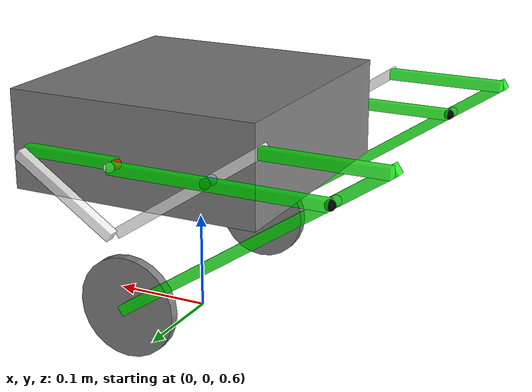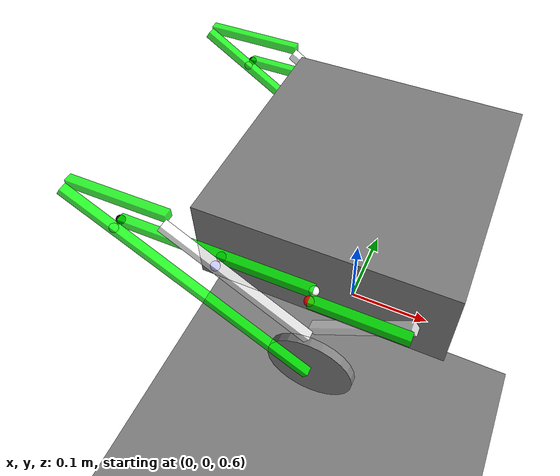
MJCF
<?xml version='1.0' encoding='utf-8'?>
<mujoco>
    <compiler angle="radian" meshdir="meshes" autolimits="true" />
    <option timestep="0.002" gravity="0 0 -9.81" integrator="implicitfast" density="1.225" viscosity="1.8e-5" />
    <asset>
        <mesh name="tetrahedron" vertex="0 0 0 1 0 0 0 1 0 0 0 1" />
        <texture type="skybox" builtin="gradient" rgb1=".1 .1 .1" rgb2=".9 .9 .9" width="512" height="512" />
        <texture name="plane" type="2d" builtin="checker" rgb1=".1 .1 .1" rgb2=".9 .9 .9" width="512" height="512" mark="cross" markrgb=".8 .8 .8" />
        <material name="plane" reflectance="0.3" texture="plane" texrepeat="1 1" texuniform="true" />
    </asset>

    <default>

    </default>

    <worldbody>
        <geom type="plane" material="plane" pos="0 0 0" size="0 0 .25" />
        <light directional="true" dir="0 0 -1" diffuse="1 1 1" specular=".5 .5 .5" />

        <body>

        <body name="body" pos="0 0 .8">
            <geom type="box" size="0.13 0.13 0.05" mass="10.0" />
        </body>

        <body name="left" pos="0 -0.15 .8">

            <geom type="sphere" size="0.001" mass="0.001" rgba="0 0 0 0" />
            <body name="l1_L" pos="0 0 0">
                <geom type="box" size="0.04900000 0.00500000 0.00500000" rgba="0 1 0 .8" pos="0.04900000 0.00000000 0.00000000" quat="1.00000000 0.00000000 0.00000000 0.00000000" />
                <joint type="hinge" name="joint_l1_L" pos="0 0 0" axis="0 1 0" />
                <site type="sphere" name="l1_L" size=".005" pos="0 0 0" rgba="1 0 0 1" />

                <body name="l2_L" pos="0.098 0.012 0">
                    <joint type="hinge" name="joint_l2_L" pos="0 0 0" axis="0 1 0" />
                    <geom type="box" size="0.05900092 0.00500000 0.00500000" rgba="1 1 1 .8" pos="-0.04900000 0.00000000 -0.03286500" quat="-0.00000000 0.95668583 0.00000000 0.29112234" />

                    <body name="l3_L" pos="-0.098 -0.012 -0.06573">
                    <joint type="hinge" name="joint_l3_L" pos="0 0 0" axis="0 1 0" />
                    <geom type="box" size="0.09100031 0.00500000 0.00500000" rgba="1 1 1 .8" pos="-0.07557500 0.00000000 0.05069000" quat="0.00000000 -0.95668481 0.00000000 0.29112569" />
                    <site type="sphere" name="l3_L" size=".005" pos="-0.098 0 0.06573" rgba="0 0 1 1" />

                    <body name="l4_L" pos="-0.15115 0.012 0.10138">
                    <joint type="hinge" name="joint_l4_L" pos="0 0 0" axis="0 1 0" />
                    <geom type="box" size="0.05850000 0.00500000 0.00500000" rgba="0 1 0 .8" pos="-0.05850000 0.00000000 0.00000000" quat="0.00000000 0.00000000 1.00000000 0.00000000" />

                    <body name="l5_L" pos="-0.117 -0.012 0">
                    <joint type="hinge" name="joint_l5_L" pos="0 0 0" axis="0 1 0" />
                    <geom type="box" size="0.16099959 0.00500000 0.00500000" rgba="0 1 0 .8" pos="0.13371000 0.00000000 -0.08968000" quat="-0.00000000 0.29111936 0.00000000 0.95668674" />
                    <site type="sphere" name="l5_L" size=".005" pos="0.05315 0 -0.03565" rgba="1 1 1 1" />

                    <body name="wheel_L" pos="0.26742 0.01 -0.17936">
                        <geom type="cylinder" size="0.05 0.005" mass="00.5" euler="1.57 0 0" />
                        <joint type="hinge" name="joint_wheel_L" pos="0 0 0" axis="0 1 0" />
                    </body>

                    </body>
                    </body>
                    </body>
                    </body>
            </body>

            <body name="l6" pos="0 0.012 0">
              <joint type="hinge" name="joint_l6_L" pos="0 0 0" axis="0 1 0" />

              <geom type="box" size="0.10750000 0.00500000 0.00500000" rgba="0 1 0 .8" pos="-0.10750000 0.00000000 0.00000000" quat="0.00000000 0.00000000 1.00000000 0.00000000" />
              <site type="sphere" name="l6r_L" size=".005" pos="0 0 0" rgba="1 1 1 1" />
              <site type="sphere" name="l6m_L" size=".005" pos="-0.098 0 0" rgba="0 0 0 1" />
              <site type="sphere" name="l6l_L" size=".005" pos="-0.215 0 0" rgba="0 0 0 1" />
            </body>

        </body>

        <body name="right" pos="0 0.15 .8">

            <geom type="sphere" size="0.001" mass="0.001" rgba="0 0 0 0" />
            <body name="l1_R" pos="0 0 0">
                <geom type="box" size="0.04900000 0.00500000 0.00500000" rgba="0 1 0 .8" pos="0.04900000 0.00000000 0.00000000" quat="1.00000000 0.00000000 0.00000000 0.00000000" />
                <joint type="hinge" name="joint_l1_R" pos="0 0 0" axis="0 1 0" />
                <site type="sphere" name="l1_R" size=".005" pos="0 0 0" rgba="1 0 0 1" />

                <body name="l2_R" pos="0.098 0.012 0">
                    <joint type="hinge" name="joint_l2_R" pos="0 0 0" axis="0 1 0" />
                    <geom type="box" size="0.05900092 0.00500000 0.00500000" rgba="1 1 1 .8" pos="-0.04900000 0.00000000 -0.03286500" quat="-0.00000000 0.95668583 0.00000000 0.29112234" />

                    <body name="l3_R" pos="-0.098 -0.012 -0.06573">
                    <joint type="hinge" name="joint_l3_R" pos="0 0 0" axis="0 1 0" />
                    <geom type="box" size="0.09100031 0.00500000 0.00500000" rgba="1 1 1 .8" pos="-0.07557500 0.00000000 0.05069000" quat="0.00000000 -0.95668481 0.00000000 0.29112569" />
                    <site type="sphere" name="l3_R" size=".005" pos="-0.098 0 0.06573" rgba="0 0 1 1" />

                    <body name="l4_R" pos="-0.15115 0.012 0.10138">
                    <joint type="hinge" name="joint_l4_R" pos="0 0 0" axis="0 1 0" />
                    <geom type="box" size="0.05850000 0.00500000 0.00500000" rgba="0 1 0 .8" pos="-0.05850000 0.00000000 0.00000000" quat="0.00000000 0.00000000 1.00000000 0.00000000" />

                    <body name="l5_R" pos="-0.117 -0.012 0">
                    <joint type="hinge" name="joint_l5_R" pos="0 0 0" axis="0 1 0" />
                    <geom type="box" size="0.16099959 0.00500000 0.00500000" rgba="0 1 0 .8" pos="0.13371000 0.00000000 -0.08968000" quat="-0.00000000 0.29111936 0.00000000 0.95668674" />
                    <site type="sphere" name="l5_R" size=".005" pos="0.05315 0 -0.03565" rgba="1 1 1 1" />

                    <body name="wheel_R" pos="0.26742 -0.01 -0.17936">
                        <geom type="cylinder" size="0.05 0.005" mass="00.5" euler="1.57 0 0" />
                        <joint type="hinge" name="joint_wheel_R" pos="0 0 0" axis="0 -1 0" />
                    </body>

                    </body>
                    </body>
                    </body>
                    </body>
            </body>

            <body name="l6_R" pos="0 0.012 0">
              <joint type="hinge" name="joint_l6_R" pos="0 0 0" axis="0 1 0" />

              <geom type="box" size="0.10750000 0.00500000 0.00500000" rgba="0 1 0 .8" pos="-0.10750000 0.00000000 0.00000000" quat="0.00000000 0.00000000 1.00000000 0.00000000" />
              <site type="sphere" name="l6r_R" size=".005" pos="0 0 0" rgba="1 1 1 1" />
              <site type="sphere" name="l6m_R" size=".005" pos="-0.098 0 0" rgba="0 0 0 1" />
              <site type="sphere" name="l6l_R" size=".005" pos="-0.215 0 0" rgba="0 0 0 1" />
            </body>

        </body>

        </body>

    </worldbody>

    <equality>

         <connect site1="l3_L" site2="l6m_L" solref="0.002 1" />
         <connect site1="l5_L" site2="l6l_L" solref="0.002 1" />
         <connect site1="l3_R" site2="l6m_R" solref="0.002 1" />
         <connect site1="l5_R" site2="l6l_R" solref="0.002 1" />
    </equality>

    <actuator>
        <position kp="2" kv=".1" name="left_front" ctrlrange="-3.14 3.14" forcerange="-10 10" joint="joint_l1_L" />
        <position kp="2" kv=".1" name="left_back" ctrlrange="-3.14 3.14" forcerange="-10 10" joint="joint_l6_L" />
        <position kp="2" kv=".1" name="left_wheel" ctrlrange="-3.14 3.14" forcerange="-5 5" joint="joint_wheel_L" />
        <position kp="2" kv=".1" name="right_front" ctrlrange="-3.14 3.14" forcerange="-10 10" joint="joint_l1_R" />
        <position kp="2" kv=".1" name="right_back" ctrlrange="-3.14 3.14" forcerange="-10 10" joint="joint_l6_R" />
        <position kp="2" kv=".1" name="right_wheel" ctrlrange="-3.14 3.14" forcerange="-5 5" joint="joint_wheel_R" />
    </actuator>
</mujoco>
